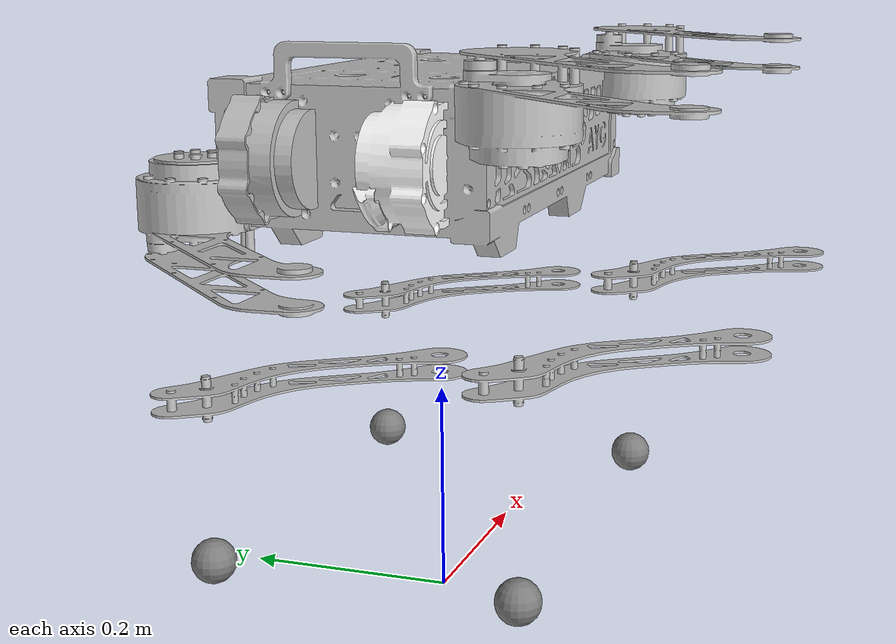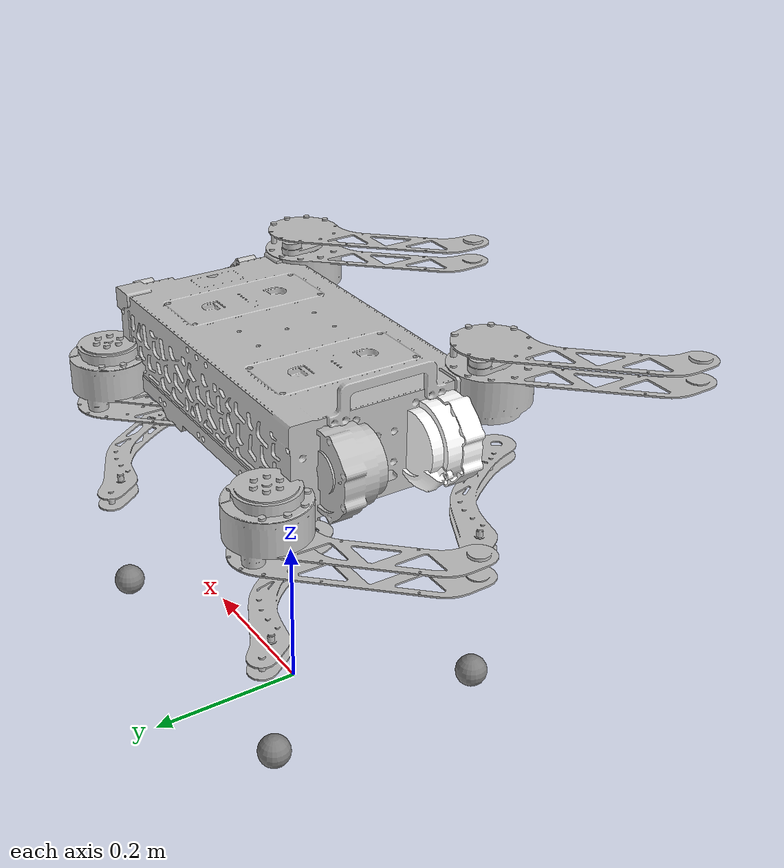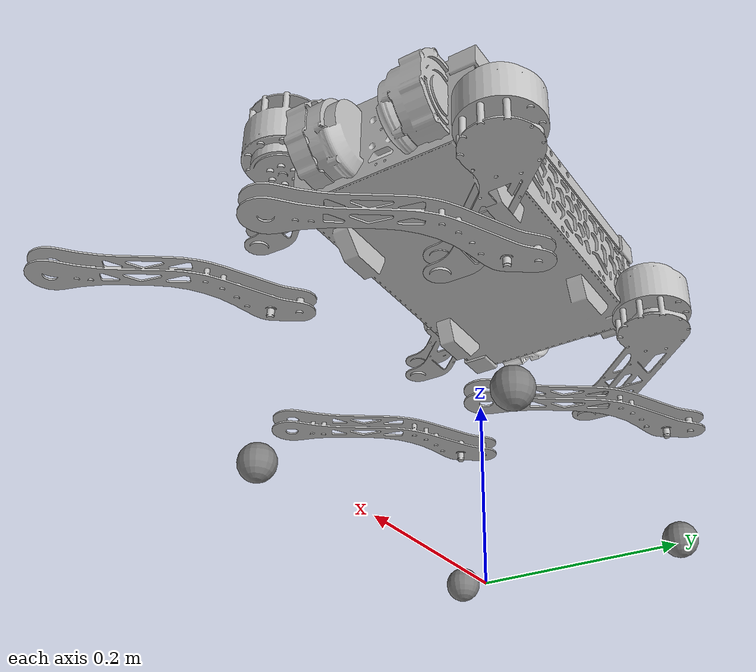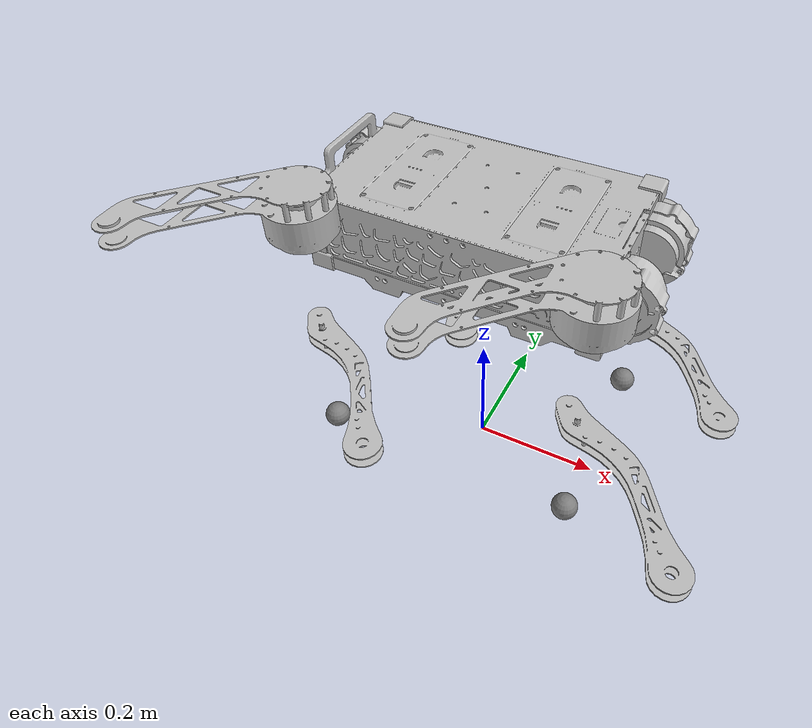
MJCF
<mujoco model="m2_description">
  <compiler angle="radian" meshdir="../meshes/" autolimits="true"/>

  <option cone="elliptic" impratio="100"/>

  <default>
    <default class="m2">
      <geom friction="0.6" margin="0.001" condim="1"/>
      <joint axis="0 1 0" damping="0" armature="0.01" frictionloss="0.0"/>
      <motor ctrlrange="-23.7 23.7"/>
      <default class="abduction">
        <joint axis="1 0 0" range="-1.0472 1.0472"/>
      </default>
      <default class="hip">
        <default class="front_hip">
          <joint range="-1.5708 3.4907"/>
        </default>
        <default class="back_hip">
          <joint range="-0.5236 4.5379"/>
        </default>
      </default>
      <default class="knee">
        <joint range="-2.7227 -0.83776"/>
        <motor ctrlrange="-45.43 45.43"/>
      </default>
      <default class="visual">
        <geom type="mesh" contype="0" conaffinity="0" group="2"/>
      </default>
      <default class="collision">
        <geom group="3"/>
        <default class="foot">
          <geom size="0.022" pos="-0.002 0 -0.213" priority="1" solimp="0.015 1 0.031" condim="6"
            friction="0.8 0.02 0.01"/>
        </default>
      </default>
    </default>
  </default>

  <asset>
    <mesh name="BASE" file="BASE.STL"/>
    <mesh name="RF_HIP" file="RF_HIP.STL"/>
    <mesh name="RF_THIGH" file="RF_THIGH.STL"/>
    <mesh name="RF_SHANK" file="RF_SHANK.STL"/>
    <mesh name="LF_HIP" file="LF_HIP.STL"/>
    <mesh name="LF_THIGH" file="LF_THIGH.STL"/>
    <mesh name="LF_SHANK" file="LF_SHANK.STL"/>
    <mesh name="RH_HIP" file="RH_HIP.STL"/>
    <mesh name="RH_THIGH" file="RH_THIGH.STL"/>
    <mesh name="RH_SHANK" file="RH_SHANK.STL"/>
    <mesh name="LH_HIP" file="LH_HIP.STL"/>
    <mesh name="LH_THIGH" file="LH_THIGH.STL"/>
    <mesh name="LH_SHANK" file="LH_SHANK.STL"/>
  </asset>
  <worldbody>
    <body name="base" pos="0 0 0.445" childclass="m2">
      <site name="base" pos="0 0 0"/>
      <inertial pos="0.0047249 -1.77e-05 0.0011585" quat="-0.000260903 0.717627 0.00016572 0.696428" mass="3.4234" diaginertia="0.0511653 0.0425922 0.0163651"/>
      <joint name="floating_base" type="free" limited="false" actuatorfrclimited="false"/>
      <geom type="mesh" contype="0" conaffinity="0" group="1" density="0" rgba="0.75294 0.75294 0.75294 1" mesh="BASE"/>
      <geom type="mesh" rgba="0.75294 0.75294 0.75294 1" mesh="BASE"/>
      <!-- update IMU location after verification from CAD-->
      <site name="imu" pos="0 0 0"/>
      <body name="FR_hip" pos="0.199375 -0.06 0">
        <inertial pos="0 -0.0779589 0.0008006" quat="0.566519 0.534654 -0.463805 0.422002" mass="1.35095" diaginertia="0.00339256 0.00334788 0.00111396"/>
        <joint name="FR_hip_joint" pos="0 0 0" axis="1 0 0" limited="true" range="-4.8 4.8" class="abduction"/>
        <geom pos="-0.0492121 0 0" type="mesh" contype="0" conaffinity="0" group="1" density="0" rgba="0.75294 0.75294 0.75294 1" mesh="RF_HIP"/>
        <geom pos="-0.0492121 0 0" type="mesh" rgba="0.75294 0.75294 0.75294 1" mesh="RF_HIP"/>
        <body name="FR_thigh" pos="0 -0.0796 0">
          <inertial pos="-4.2e-06 0.0008381 -0.0603416" quat="0.707013 0.00792999 -0.00786517 0.707113" mass="0.250246" diaginertia="0.00115964 0.0011437 7.14571e-05"/>
          <joint name="FR_thigh_joint" pos="0 0 0" axis="0 1 0" limited="true" range="-4.0472 4.18879" class="front_hip"/>
          <geom type="mesh" contype="0" conaffinity="0" group="1" density="0" rgba="0.75294 0.75294 0.75294 1" mesh="RF_THIGH"/>
          <geom type="mesh" rgba="0.75294 0.75294 0.75294 1" mesh="RF_THIGH"/>
          <body name="FR_calf" pos="0 0 -0.1915">
            <inertial pos="-0.00298301 -2.42899e-05 -0.0796485" quat="0.706021 0.0166796 0.0171746 0.707786" mass="0.22674" diaginertia="0.00128544 0.00126207 4.21689e-05"/>
            <joint name="FR_calf_joint" pos="0 0 0" axis="0 1 0" limited="true" range="-4.69653 4.9163" class="knee"/>
            <geom type="mesh" contype="0" conaffinity="0" group="1" density="0" rgba="0.75294 0.75294 0.75294 1" mesh="RF_SHANK"/>
            <geom type="mesh" rgba="0.75294 0.75294 0.75294 1" mesh="RF_SHANK"/>
            <geom size="0.02" pos="0 0 -0.16693" contype="0" conaffinity="0" group="1" density="0"/>
            <site name="FR_foot" pos="0 0 -0.16802"/>
          </body>
        </body>
      </body>
      <body name="FL_hip" pos="0.199375 0.06 0">
        <inertial pos="0 0.0779589 0.0008006" quat="0.534654 0.566519 -0.422002 0.463805" mass="1.35095" diaginertia="0.00339256 0.00334788 0.00111396"/>
        <joint name="FL_hip_joint" pos="0 0 0" axis="1 0 0" limited="true" range="-3.80285 3.80285" class="abduction"/>
        <geom pos="-0.0492121 0 0" type="mesh" contype="0" conaffinity="0" group="1" density="0" rgba="0.752941 0.752941 0.752941 1" mesh="LF_HIP"/>
        <geom pos="-0.0492121 0 0" type="mesh" rgba="0.752941 0.752941 0.752941 1" mesh="LF_HIP"/>
        <body name="FL_thigh" pos="0 0.0796 0">
          <inertial pos="-4.2e-06 -0.0008381 -0.0603416" quat="0.707113 0.00786517 -0.00792999 0.707013" mass="0.250246" diaginertia="0.00115964 0.0011437 7.14571e-05"/>
          <joint name="FL_thigh_joint" pos="0 0 0" axis="0 1 0" limited="true" range="-4.0472 4.18879" class="front_hip"/>
          <geom type="mesh" contype="0" conaffinity="0" group="1" density="0" rgba="0.752941 0.752941 0.752941 1" mesh="LF_THIGH"/>
          <geom type="mesh" rgba="0.752941 0.752941 0.752941 1" mesh="LF_THIGH"/>
          <body name="FL_calf" pos="0 0 -0.1915">
            <inertial pos="-0.00298301 2.42899e-05 -0.0796485" quat="0.707786 0.0171746 0.0166796 0.706021" mass="0.22674" diaginertia="0.00128544 0.00126207 4.21689e-05"/>
            <joint name="FL_calf_joint" pos="0 0 0" axis="0 1 0" limited="true" range="-4.69653 4.9163" class="knee"/>
            <geom type="mesh" contype="0" conaffinity="0" group="1" density="0" rgba="0.752941 0.752941 0.752941 1" mesh="LF_SHANK"/>
            <geom type="mesh" rgba="0.752941 0.752941 0.752941 1" mesh="LF_SHANK"/>
            <geom size="0.02" pos="0 0 -0.16693" contype="0" conaffinity="0" group="1" density="0"/>
            <site name="FL_foot" pos="0 0 -0.16802"/>
          </body>
        </body>
      </body>
      <body name="RR_hip" pos="-0.199375 -0.06 0">
        <inertial pos="0 -0.0779589 0.0008006" quat="0.422002 0.463805 -0.534654 0.566519" mass="1.35095" diaginertia="0.00339256 0.00334788 0.00111396"/>
        <joint name="RR_hip_joint" pos="0 0 0" axis="1 0 0" limited="true" range="-4.80285 4.80285" class="abduction"/>
        <geom pos="0.0492121 0 0" type="mesh" contype="0" conaffinity="0" group="1" density="0" rgba="1 1 1 1" mesh="RH_HIP"/>
        <geom pos="0.0492121 0 0" type="mesh" rgba="1 1 1 1" mesh="RH_HIP"/>
        <body name="RR_thigh" pos="0 -0.0796 0">
          <inertial pos="4.2e-06 0.0008381 -0.0603416" quat="0.707113 -0.00786517 0.00792999 0.707013" mass="0.250246" diaginertia="0.00115964 0.0011437 7.14571e-05"/>
          <joint name="RR_thigh_joint" pos="0 0 0" axis="0 1 0" limited="true" range="-4.0472 4.18879" class="back_hip"/>
          <geom type="mesh" contype="0" conaffinity="0" group="1" density="0" rgba="0.752941 0.752941 0.752941 1" mesh="RH_THIGH"/>
          <geom type="mesh" rgba="0.752941 0.752941 0.752941 1" mesh="RH_THIGH"/>
          <body name="RR_calf" pos="0 0 -0.1915">
            <inertial pos="0.00331334 2.42899e-05 -0.0797686" quat="0.709473 0.0209072 0.021665 0.704089" mass="0.22674" diaginertia="0.00128975 0.0012685 4.00423e-05"/>
            <joint name="RR_calf_joint" pos="0 0 0" axis="0 1 0" limited="true" range="-4.69653 4.9163" class="knee"/>
            <geom type="mesh" contype="0" conaffinity="0" group="1" density="0" rgba="0.752941 0.752941 0.752941 1" mesh="RH_SHANK"/>
            <geom type="mesh" rgba="0.752941 0.752941 0.752941 1" mesh="RH_SHANK"/>
            <geom size="0.02" pos="0 0 -0.16802" contype="0" conaffinity="0" group="1" density="0"/>
            <site name="RR_foot" pos="0 0 -0.16802"/>
          </body>
        </body>
      </body>
      <body name="RL_hip" pos="-0.199375 0.06 0">
        <inertial pos="0 0.0779589 0.0008006" quat="0.463805 0.422002 -0.566519 0.534654" mass="1.35095" diaginertia="0.00339256 0.00334788 0.00111396"/>
        <joint name="RL_hip_joint" pos="0 0 0" axis="1 0 0" limited="true" range="-4.80285 4.80285" class="abduction"/>
        <geom pos="0.0492121 0 0" type="mesh" contype="0" conaffinity="0" group="1" density="0" rgba="0.752941 0.752941 0.752941 1" mesh="LH_HIP"/>
        <geom pos="0.0492121 0 0" type="mesh" rgba="0.752941 0.752941 0.752941 1" mesh="LH_HIP"/>
        <body name="RL_thigh" pos="0 0.0796 0">
          <inertial pos="-4.2e-06 -0.0008381 -0.0603416" quat="0.707013 0.00792999 -0.00786517 0.707113" mass="0.250246" diaginertia="0.00115964 0.0011437 7.14571e-05"/>
          <joint name="RL_thigh_joint" pos="0 0 0" axis="0 1 0" limited="true" range="-4.0472 4.18879" class="back_hip"/>
          <geom type="mesh" contype="0" conaffinity="0" group="1" density="0" rgba="0.752941 0.752941 0.752941 1" mesh="LH_THIGH"/>
          <geom type="mesh" rgba="0.752941 0.752941 0.752941 1" mesh="LH_THIGH"/>
          <body name="RL_calf" pos="0 0 -0.1915">
            <inertial pos="0.00331334 -2.42899e-05 -0.0797686" quat="0.704089 0.021665 0.0209072 0.709473" mass="0.22674" diaginertia="0.00128975 0.0012685 4.00423e-05"/>
            <joint name="RL_calf_joint" pos="0 0 0" axis="0 1 0" limited="true" range="-4.69653 4.9163" class="knee"/>
            <geom type="mesh" contype="0" conaffinity="0" group="1" density="0" rgba="0.752941 0.752941 0.752941 1" mesh="LH_SHANK"/>
            <geom type="mesh" rgba="0.752941 0.752941 0.752941 1" mesh="LH_SHANK"/>
            <geom size="0.02" pos="0 0 -0.16802" contype="0" conaffinity="0" group="1" density="0"/>
            <site name="RL_foot" pos="0 0 -0.16802"/>
          </body>
        </body>
      </body>
    </body>
  </worldbody>

  <actuator>
    <motor class="abduction" name="FL_hip" joint="FL_hip_joint"/>
    <motor class="hip" name="FL_thigh" joint="FL_thigh_joint"/>
    <motor class="knee" name="FL_calf" joint="FL_calf_joint"/>
    <motor class="abduction" name="FR_hip" joint="FR_hip_joint"/>
    <motor class="hip" name="FR_thigh" joint="FR_thigh_joint"/>
    <motor class="knee" name="FR_calf" joint="FR_calf_joint"/>
    <motor class="abduction" name="RL_hip" joint="RL_hip_joint"/>
    <motor class="hip" name="RL_thigh" joint="RL_thigh_joint"/>
    <motor class="knee" name="RL_calf" joint="RL_calf_joint"/>
    <motor class="abduction" name="RR_hip" joint="RR_hip_joint"/>
    <motor class="hip" name="RR_thigh" joint="RR_thigh_joint"/>
    <motor class="knee" name="RR_calf" joint="RR_calf_joint"/>
  </actuator>

  <sensor>
    <jointpos name="FL_hip_position_sensor" joint="FL_hip_joint" noise="0.001"/>
    <jointpos name="FL_thigh_position_sensor" joint="FL_thigh_joint" noise="0.001"/>
    <jointpos name="FL_calf_position_sensor" joint="FL_calf_joint" noise="0.001"/>
    <jointpos name="FR_hip_position_sensor" joint="FR_hip_joint" noise="0.001"/>
    <jointpos name="FR_thigh_position_sensor" joint="FR_thigh_joint" noise="0.001"/>
    <jointpos name="FR_calf_position_sensor" joint="FR_calf_joint" noise="0.001"/>
    <jointpos name="RL_hip_position_sensor" joint="RL_hip_joint" noise="0.001"/>
    <jointpos name="RL_thigh_position_sensor" joint="RL_thigh_joint" noise="0.001"/>
    <jointpos name="RL_calf_position_sensor" joint="RL_calf_joint" noise="0.001"/>
    <jointpos name="RR_hip_position_sensor" joint="RR_hip_joint" noise="0.001"/>
    <jointpos name="RR_thigh_position_sensor" joint="RR_thigh_joint" noise="0.001"/>
    <jointpos name="RR_calf_position_sensor" joint="RR_calf_joint" noise="0.001"/>

    <jointvel name="FL_hip_velocity_sensor" joint="FL_hip_joint" noise="0.001"/>
    <jointvel name="FL_thigh_velocity_sensor" joint="FL_thigh_joint" noise="0.001"/>
    <jointvel name="FL_calf_velocity_sensor" joint="FL_calf_joint" noise="0.001"/>
    <jointvel name="FR_hip_velocity_sensor" joint="FR_hip_joint" noise="0.001"/>
    <jointvel name="FR_thigh_velocity_sensor" joint="FR_thigh_joint" noise="0.001"/>
    <jointvel name="FR_calf_velocity_sensor" joint="FR_calf_joint" noise="0.001"/>
    <jointvel name="RL_hip_velocity_sensor" joint="RL_hip_joint" noise="0.001"/>
    <jointvel name="RL_thigh_velocity_sensor" joint="RL_thigh_joint" noise="0.001"/>
    <jointvel name="RL_calf_velocity_sensor" joint="RL_calf_joint" noise="0.001"/>
    <jointvel name="RR_hip_velocity_sensor" joint="RR_hip_joint" noise="0.001"/>
    <jointvel name="RR_thigh_velocity_sensor" joint="RR_thigh_joint" noise="0.001"/>
    <jointvel name="RR_calf_velocity_sensor" joint="RR_calf_joint" noise="0.001"/>

    <actuatorfrc name="FL_hip_force_sensor" actuator="FL_hip" noise="0.001"/>
    <actuatorfrc name="FL_thigh_force_sensor" actuator="FL_thigh" noise="0.001"/>
    <actuatorfrc name="FL_calf_force_sensor" actuator="FL_calf" noise="0.001"/>
    <actuatorfrc name="FR_hip_force_sensor" actuator="FR_hip" noise="0.001"/>
    <actuatorfrc name="FR_thigh_force_sensor" actuator="FR_thigh" noise="0.001"/>
    <actuatorfrc name="FR_calf_force_sensor" actuator="FR_calf" noise="0.001"/>
    <actuatorfrc name="RL_hip_force_sensor" actuator="RL_hip" noise="0.001"/>
    <actuatorfrc name="RL_thigh_force_sensor" actuator="RL_thigh" noise="0.001"/>
    <actuatorfrc name="RL_calf_force_sensor" actuator="RL_calf" noise="0.001"/>
    <actuatorfrc name="RR_hip_force_sensor" actuator="RR_hip" noise="0.001"/>
    <actuatorfrc name="RR_thigh_force_sensor" actuator="RR_thigh" noise="0.001"/>
    <actuatorfrc name="RR_calf_force_sensor" actuator="RR_calf" noise="0.001"/>

    <accelerometer name="linear_acceleration" site="imu" noise="0.001"/>
    <gyro name="angular_velocity" site="imu" noise="0.001"/>

    <framequat name="imu_orientation" objtype="site" objname="imu" noise="0.001"/>

    <framepos name="base_position" objtype="site" objname="base" noise="0.001"/>
    <framelinvel name="base_lin_vel" objtype="site" objname="base" noise="0.001"/>
    <frameangvel name="base_ang_vel" objtype="site" objname="base" noise="0.001"/>
    <framelinacc name="base_lin_acc" objtype="site" objname="base" noise="0.001"/>
    <frameangacc name="base_ang_acc" objtype="site" objname="base" noise="0.001"/>

    <force name="contact_force_FL" site="FL_foot" />
    <force name="contact_force_FR" site="FR_foot" />
    <force name="contact_force_RL" site="RL_foot" />
    <force name="contact_force_RR" site="RR_foot" />
  </sensor>

  <keyframe>
    <key name="home" qpos="0 0 0.27 1 0 0 0 0 0.9 -1.8 0 0.9 -1.8 0 0.9 -1.8 0 0.9 -1.8"
      ctrl="0 0.9 -1.8 0 0.9 -1.8 0 0.9 -1.8 0 0.9 -1.8"/>
  </keyframe>

</mujoco>
